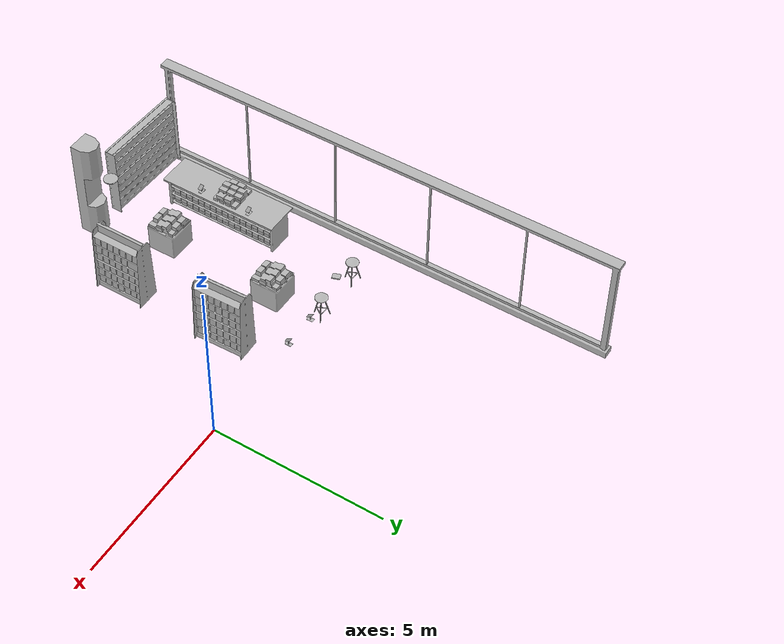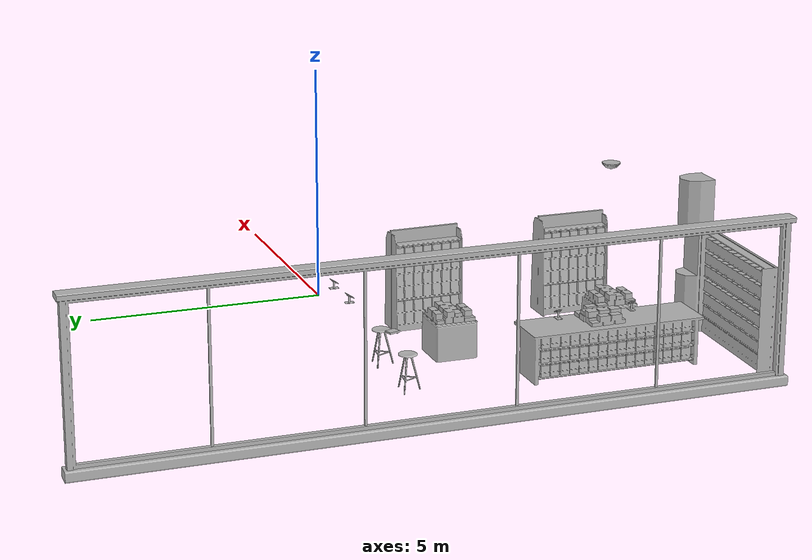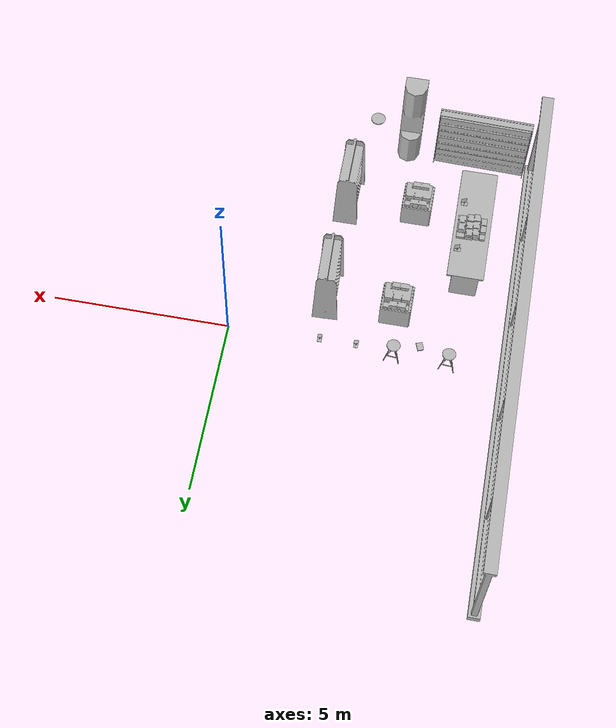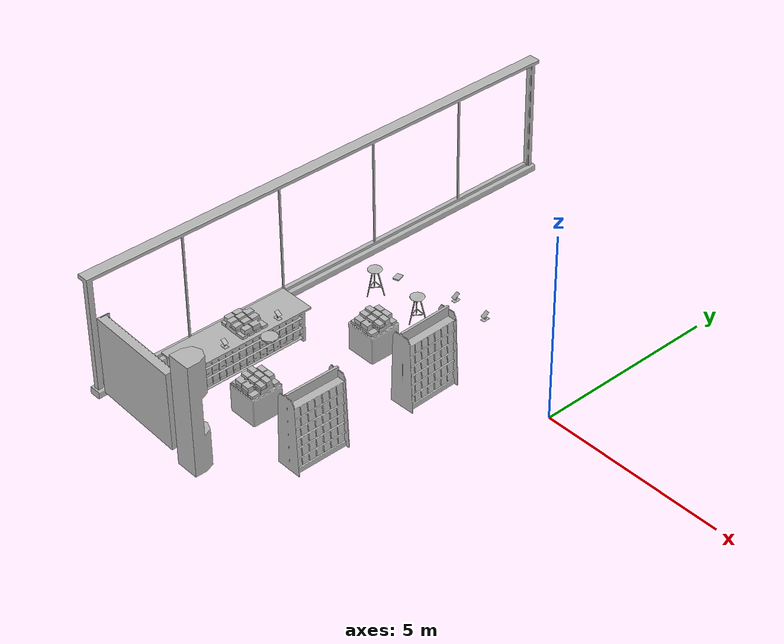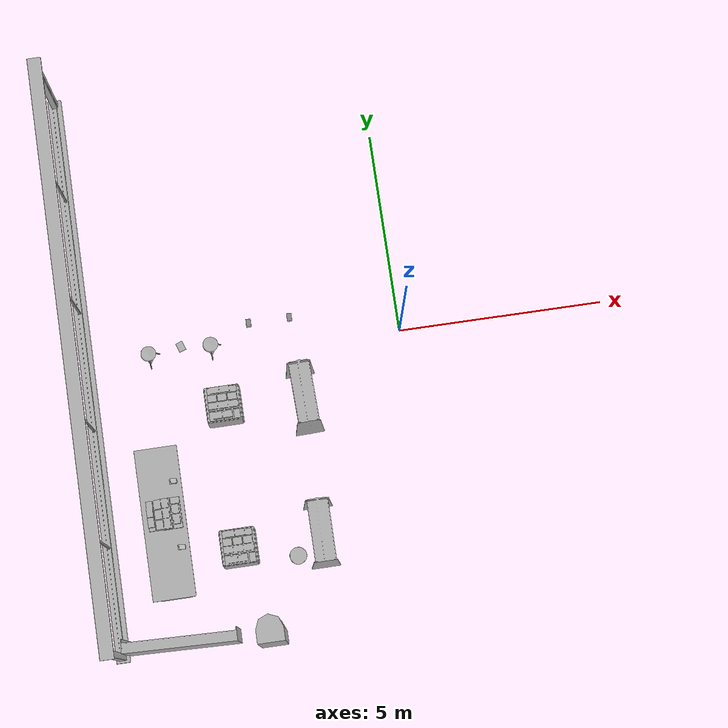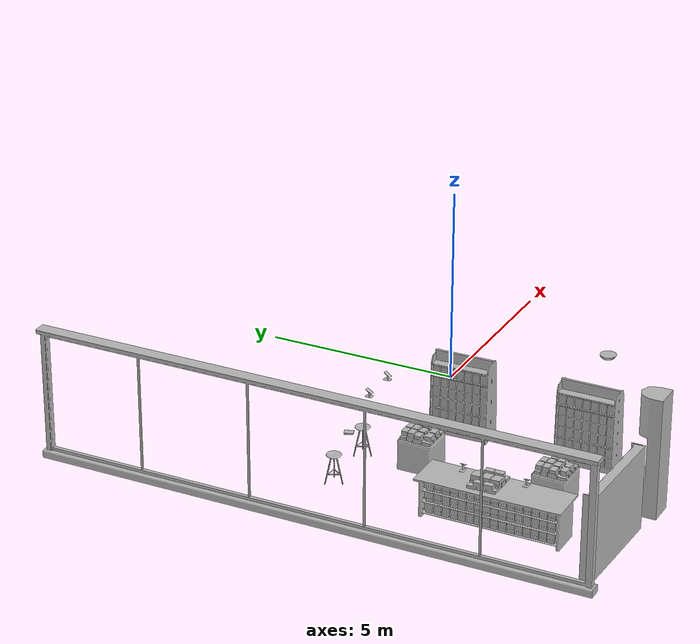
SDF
<sdf version="1.6">
 <world name="default">
  <model name="BookE_01_012">
   <link name="aws_robomaker_retail_BookE_01::link">
    <inertial>
     <mass>1</mass>
     <inertia><ixy>0</ixy><ixz>0</ixz><iyz>0</iyz><ixx>0.0666</ixx><iyy>0.0346</iyy><izz>0.0986</izz></inertia>
    </inertial>
    <collision name="collision">
     <geometry>
      <mesh>
       <uri>file://models/aws_robomaker_retail_BookE_01/meshes/aws_BookE_01_collision.DAE</uri>
       <scale>1 1 1</scale>
      </mesh>
     </geometry>
    </collision>
    <visual name="visual">
     <geometry>
      <mesh><uri>file://models/aws_robomaker_retail_BookE_01/meshes/aws_BookE_01_visual.DAE</uri></mesh>
     </geometry>
     <meta><layer>1</layer></meta>
    </visual>
   </link>
   <static>1</static>
   <pose>-5.33358 0.186186 0.949316 -1e-06 -0.004549 -2.79848</pose>
  </model>
  <model name="BookD_01_002">
   <link name="aws_robomaker_retail_BookD_01::link">
    <inertial><mass>0.5</mass></inertial>
    <collision name="collision">
     <geometry>
      <mesh>
       <uri>file://models/aws_robomaker_retail_BookD_01/meshes/aws_BookD_01_collision.DAE</uri>
       <scale>1 1 1</scale>
      </mesh>
     </geometry>
    </collision>
    <visual name="visual">
     <geometry>
      <mesh><uri>file://models/aws_robomaker_retail_BookD_01/meshes/aws_BookD_01_visual.DAE</uri></mesh>
     </geometry>
     <meta><layer>1</layer></meta>
    </visual>
   </link>
   <static>1</static>
   <pose>-4.50961 -1.31254 0.804482 0 0 -4e-06</pose>
  </model>
  <model name="BookF_01_003">
   <link name="aws_robomaker_retail_BookF_01::link">
    <inertial>
     <mass>10</mass>
     <inertia>
      <ixx>0.583817</ixx>
      <ixy>0</ixy>
      <ixz>0</ixz>
      <iyy>0.502925</iyy>
      <iyz>0</iyz>
      <izz>0.99304</izz>
     </inertia>
    </inertial>
    <collision name="collision">
     <geometry>
      <mesh>
       <uri>file://models/aws_robomaker_retail_BookF_01/meshes/aws_BookF_01_collision.DAE</uri>
       <scale>1 1 1</scale>
      </mesh>
     </geometry>
    </collision>
    <visual name="visual">
     <geometry>
      <mesh><uri>file://models/aws_robomaker_retail_BookF_01/meshes/aws_BookF_01_visual.DAE</uri></mesh>
     </geometry>
     <meta><layer>1</layer></meta>
    </visual>
   </link>
   <static>1</static>
   <pose>-4.60493 -4.77214 0.804483 4e-06 -0 0</pose>
  </model>
  <model name="BookD_01_003">
   <link name="aws_robomaker_retail_BookD_01::link">
    <inertial><mass>0.5</mass></inertial>
    <collision name="collision">
     <geometry>
      <mesh>
       <uri>file://models/aws_robomaker_retail_BookD_01/meshes/aws_BookD_01_collision.DAE</uri>
       <scale>1 1 1</scale>
      </mesh>
     </geometry>
    </collision>
    <visual name="visual">
     <geometry>
      <mesh><uri>file://models/aws_robomaker_retail_BookD_01/meshes/aws_BookD_01_visual.DAE</uri></mesh>
     </geometry>
     <meta><layer>1</layer></meta>
    </visual>
   </link>
   <static>1</static>
   <pose>-6.23561 -3.78518 1.03816 8e-06 -0 1.58038</pose>
  </model>
  <model name="BookshelfA_01_003">
   <link name="aws_robomaker_retail_BookshelfA_01::link">
    <inertial>
     <mass>50</mass>
     <inertia><ixx>27.7341</ixx><ixy>0</ixy><ixz>0</ixz><iyy>20.9361</iyy><iyz>0</iyz><izz>11.3596</izz></inertia>
    </inertial>
    <collision name="collision">
     <geometry>
      <mesh>
       <uri>file://models/aws_robomaker_retail_BookshelfA_01/meshes/aws_BookshelfA_01_collision.DAE</uri>
       <scale>1 1 1</scale>
      </mesh>
     </geometry>
    </collision>
    <visual name="visual">
     <geometry>
      <mesh><uri>file://models/aws_robomaker_retail_BookshelfA_01/meshes/aws_BookshelfA_01_visual.DAE</uri></mesh>
     </geometry>
     <meta><layer>1</layer></meta>
    </visual>
   </link>
   <static>1</static>
   <pose>-2.55449 -1.48746 0.006337 0.001313 -0.001987 0.031824</pose>
  </model>
  <model name="BookshelfA_01_004">
   <link name="aws_robomaker_retail_BookshelfA_01::link">
    <inertial>
     <mass>50</mass>
     <inertia><ixx>27.7341</ixx><ixy>0</ixy><ixz>0</ixz><iyy>20.9361</iyy><iyz>0</iyz><izz>11.3596</izz></inertia>
    </inertial>
    <collision name="collision">
     <geometry>
      <mesh>
       <uri>file://models/aws_robomaker_retail_BookshelfA_01/meshes/aws_BookshelfA_01_collision.DAE</uri>
       <scale>1 1 1</scale>
      </mesh>
     </geometry>
    </collision>
    <visual name="visual">
     <geometry>
      <mesh><uri>file://models/aws_robomaker_retail_BookshelfA_01/meshes/aws_BookshelfA_01_visual.DAE</uri></mesh>
     </geometry>
     <meta><layer>1</layer></meta>
    </visual>
   </link>
   <static>1</static>
   <pose>-2.60858 -4.76165 0.003411 0 -0 0</pose>
  </model>
  <model name="BookshelfB_01_001">
   <link name="aws_robomaker_retail_BookshelfB_01::link">
    <inertial>
     <mass>50</mass>
     <inertia><ixx>19.8742</ixx><ixy>0</ixy><ixz>0</ixz><iyy>49.1263</iyy><iyz>0</iyz><izz>30.2231</izz></inertia>
    </inertial>
    <collision name="collision">
     <geometry>
      <mesh>
       <uri>file://models/aws_robomaker_retail_BookshelfB_01/meshes/aws_BookshelfB_01_collision.DAE</uri>
       <scale>1 1 1</scale>
      </mesh>
     </geometry>
    </collision>
    <visual name="visual">
     <geometry>
      <mesh><uri>file://models/aws_robomaker_retail_BookshelfB_01/meshes/aws_BookshelfB_01_visual.DAE</uri></mesh>
     </geometry>
     <meta><layer>1</layer></meta>
    </visual>
   </link>
   <static>1</static>
   <pose>-6.18968 -6.78565 -0.008942 0.003533 0.000121 -0.032073</pose>
  </model>
  <model name="BookshelfC_01_003">
   <link name="aws_robomaker_retail_BookshelfC_01::link">
    <inertial>
     <mass>50</mass>
     <inertia><ixx>5.5865</ixx><ixy>0</ixy><ixz>0</ixz><iyy>5.47324</iyy><iyz>0</iyz><izz>6.23277</izz></inertia>
    </inertial>
    <collision name="collision">
     <geometry>
      <mesh>
       <uri>file://models/aws_robomaker_retail_BookshelfC_01/meshes/aws_BookshelfC_01_collision.DAE</uri>
       <scale>1 1 1</scale>
      </mesh>
     </geometry>
    </collision>
    <visual name="visual">
     <geometry>
      <mesh><uri>file://models/aws_robomaker_retail_BookshelfC_01/meshes/aws_BookshelfC_01_visual.DAE</uri></mesh>
     </geometry>
     <meta><layer>1</layer></meta>
    </visual>
   </link>
   <static>1</static>
   <pose>-4.51711 -1.31023 0.045908 0 -0 0</pose>
  </model>
  <model name="BookshelfC_01_004">
   <link name="aws_robomaker_retail_BookshelfC_01::link">
    <inertial>
     <mass>50</mass>
     <inertia><ixx>5.5865</ixx><ixy>0</ixy><ixz>0</ixz><iyy>5.47324</iyy><iyz>0</iyz><izz>6.23277</izz></inertia>
    </inertial>
    <collision name="collision">
     <geometry>
      <mesh>
       <uri>file://models/aws_robomaker_retail_BookshelfC_01/meshes/aws_BookshelfC_01_collision.DAE</uri>
       <scale>1 1 1</scale>
      </mesh>
     </geometry>
    </collision>
    <visual name="visual">
     <geometry>
      <mesh><uri>file://models/aws_robomaker_retail_BookshelfC_01/meshes/aws_BookshelfC_01_visual.DAE</uri></mesh>
     </geometry>
     <meta><layer>1</layer></meta>
    </visual>
   </link>
   <static>1</static>
   <pose>-4.61436 -4.76165 0.045908 0 -0 0</pose>
  </model>
  <model name="ChairB_01_015">
   <link name="aws_robomaker_retail_ChairB_01::link">
    <inertial>
     <mass>3</mass>
     <inertia>
      <ixx>0.188185</ixx>
      <ixy>0</ixy>
      <ixz>0</ixz>
      <iyy>0.190617</iyy>
      <iyz>0</iyz>
      <izz>0.100999</izz>
     </inertia>
    </inertial>
    <collision name="collision">
     <geometry>
      <mesh>
       <uri>file://models/aws_robomaker_retail_ChairB_01/meshes/aws_ChairB_01_collision.DAE</uri>
       <scale>1 1 1</scale>
      </mesh>
     </geometry>
    </collision>
    <visual name="visual">
     <geometry>
      <mesh><uri>file://models/aws_robomaker_retail_ChairB_01/meshes/aws_ChairB_01_visual.DAE</uri></mesh>
     </geometry>
     <meta><layer>1</layer></meta>
    </visual>
   </link>
   <static>1</static>
   <pose>-4.6075 0.203637 0.030218 0.001362 -0.001944 0.000163</pose>
  </model>
  <model name="ChairB_01_016">
   <link name="aws_robomaker_retail_ChairB_01::link">
    <inertial>
     <mass>3</mass>
     <inertia>
      <ixx>0.188185</ixx>
      <ixy>0</ixy>
      <ixz>0</ixz>
      <iyy>0.190617</iyy>
      <iyz>0</iyz>
      <izz>0.100999</izz>
     </inertia>
    </inertial>
    <collision name="collision">
     <geometry>
      <mesh>
       <uri>file://models/aws_robomaker_retail_ChairB_01/meshes/aws_ChairB_01_collision.DAE</uri>
       <scale>1 1 1</scale>
      </mesh>
     </geometry>
    </collision>
    <visual name="visual">
     <geometry>
      <mesh><uri>file://models/aws_robomaker_retail_ChairB_01/meshes/aws_ChairB_01_visual.DAE</uri></mesh>
     </geometry>
     <meta><layer>1</layer></meta>
    </visual>
   </link>
   <static>1</static>
   <pose>-6.12149 0.195027 0.027272 0.001357 -0.00195 0.003291</pose>
  </model>
  <model name="ColumnB_01_002">
   <link name="aws_robomaker_retail_ColumnB_01::link">
    <inertial>
     <mass>50</mass>
     <inertia><ixx>44.5597</ixx><ixy>0</ixy><ixz>0</ixz><iyy>44.5597</iyy><iyz>0</iyz><izz>1.87942</izz></inertia>
    </inertial>
    <collision name="collision">
     <geometry>
      <mesh>
       <uri>file://models/aws_robomaker_retail_ColumnB_01/meshes/aws_ColumnB_01_collision.DAE</uri>
       <scale>1 1 1</scale>
      </mesh>
     </geometry>
    </collision>
    <visual name="visual">
     <geometry>
      <mesh><uri>file://models/aws_robomaker_retail_ColumnB_01/meshes/aws_ColumnB_01_visual.DAE</uri></mesh>
     </geometry>
     <meta><layer>1</layer></meta>
    </visual>
   </link>
   <static>1</static>
   <pose>-4.07623 -6.86071 0.017511 0.001895 -0.000628 -0.003755</pose>
  </model>
  <model name="DeskA_01_003">
   <link name="aws_robomaker_retail_DeskA_01::link">
    <inertial>
     <mass>20</mass>
     <inertia><ixx>3.49717</ixx><ixy>0</ixy><ixz>0</ixz><iyy>23.5599</iyy><iyz>0</iyz><izz>23.5702</izz></inertia>
    </inertial>
    <collision name="collision">
     <geometry>
      <mesh>
       <uri>file://models/aws_robomaker_retail_DeskA_01/meshes/aws_DeskA_01_collision.DAE</uri>
       <scale>1 1 1</scale>
      </mesh>
     </geometry>
    </collision>
    <visual name="visual">
     <geometry>
      <mesh><uri>file://models/aws_robomaker_retail_DeskA_01/meshes/aws_DeskA_01_visual.DAE</uri></mesh>
     </geometry>
     <meta><layer>1</layer></meta>
    </visual>
   </link>
   <static>1</static>
   <pose>-6.25465 -3.9792 -0.004603 0.001948 0.001361 -1.56957</pose>
  </model>
  <model name="TabletB_01_011">
   <link name="aws_robomaker_retail_TabletB_01::link">
    <inertial>
     <mass>0.161</mass>
     <inertia>
      <ixx>0.346954</ixx>
      <ixy>0</ixy>
      <ixz>0</ixz>
      <iyy>0.177288</iyy>
      <iyz>0</iyz>
      <izz>0.521826</izz>
     </inertia>
    </inertial>
    <collision name="collision">
     <geometry>
      <mesh>
       <uri>file://models/aws_robomaker_retail_TabletB_01/meshes/aws_TabletB_01_collision.DAE</uri>
       <scale>1 1 1</scale>
      </mesh>
     </geometry>
    </collision>
    <visual name="visual">
     <geometry>
      <mesh><uri>file://models/aws_robomaker_retail_TabletB_01/meshes/aws_TabletB_01_visual.DAE</uri></mesh>
     </geometry>
     <meta><layer>1</layer></meta>
    </visual>
   </link>
   <static>1</static>
   <pose>-5.91505 -3.03174 1.18472 0.518384 0.023341 1.56451</pose>
  </model>
  <model name="TabletB_01_012">
   <link name="aws_robomaker_retail_TabletB_01::link">
    <inertial>
     <mass>0.161</mass>
     <inertia>
      <ixx>0.346954</ixx>
      <ixy>0</ixy>
      <ixz>0</ixz>
      <iyy>0.177288</iyy>
      <iyz>0</iyz>
      <izz>0.521826</izz>
     </inertia>
    </inertial>
    <collision name="collision">
     <geometry>
      <mesh>
       <uri>file://models/aws_robomaker_retail_TabletB_01/meshes/aws_TabletB_01_collision.DAE</uri>
       <scale>1 1 1</scale>
      </mesh>
     </geometry>
    </collision>
    <visual name="visual">
     <geometry>
      <mesh><uri>file://models/aws_robomaker_retail_TabletB_01/meshes/aws_TabletB_01_visual.DAE</uri></mesh>
     </geometry>
     <meta><layer>1</layer></meta>
    </visual>
   </link>
   <static>1</static>
   <pose>-5.91505 -4.6124 1.18472 0.518384 0.023341 1.56451</pose>
  </model>
  <model name="Tablet_01_002">
   <link name="aws_robomaker_retail_Tablet_01::link">
    <inertial>
     <mass>0.5</mass>
     <inertia><ixx>0.035652</ixx><ixy>0</ixy><ixz>0</ixz><iyy>0.01</iyy><iyz>0</iyz><izz>0.041207</izz></inertia>
    </inertial>
    <collision name="collision">
     <geometry>
      <mesh>
       <uri>file://models/aws_robomaker_retail_Tablet_01/meshes/aws_Tablet_01_collision.DAE</uri>
       <scale>1 1 1</scale>
      </mesh>
     </geometry>
    </collision>
    <visual name="visual">
     <geometry>
      <mesh><uri>file://models/aws_robomaker_retail_Tablet_01/meshes/aws_Tablet_01_visual.DAE</uri></mesh>
     </geometry>
     <meta><layer>2</layer></meta>
    </visual>
   </link>
   <static>1</static>
   <pose>-2.65015 0.489109 1.18055 0.579329 0.041534 -0.007936</pose>
  </model>
  <model name="Tablet_01_004">
   <link name="aws_robomaker_retail_Tablet_01::link">
    <inertial>
     <mass>0.5</mass>
     <inertia><ixx>0.035652</ixx><ixy>0</ixy><ixz>0</ixz><iyy>0.01</iyy><iyz>0</iyz><izz>0.041207</izz></inertia>
    </inertial>
    <collision name="collision">
     <geometry>
      <mesh>
       <uri>file://models/aws_robomaker_retail_Tablet_01/meshes/aws_Tablet_01_collision.DAE</uri>
       <scale>1 1 1</scale>
      </mesh>
     </geometry>
    </collision>
    <visual name="visual">
     <geometry>
      <mesh><uri>file://models/aws_robomaker_retail_Tablet_01/meshes/aws_Tablet_01_visual.DAE</uri></mesh>
     </geometry>
     <meta><layer>2</layer></meta>
    </visual>
   </link>
   <static>1</static>
   <pose>-3.63933 0.489109 1.18055 0.579329 0.041534 -0.007936</pose>
  </model>
  <model name="Holder_01_006">
   <link name="aws_robomaker_retail_Holder_01::link">
    <inertial><mass>1</mass></inertial>
    <collision name="collision">
     <geometry>
      <mesh>
       <uri>file://models/aws_robomaker_retail_Holder_01/meshes/aws_Holder_01_collision.DAE</uri>
       <scale>1 1 1</scale>
      </mesh>
     </geometry>
    </collision>
    <visual name="visual">
     <geometry>
      <mesh><uri>file://models/aws_robomaker_retail_Holder_01/meshes/aws_Holder_01_visual.DAE</uri></mesh>
     </geometry>
     <meta><layer>2</layer></meta>
    </visual>
   </link>
   <static>1</static>
   <pose>-2.64781 0.495602 1.03776 0 -0 0</pose>
  </model>
  <model name="Holder_01_008">
   <link name="aws_robomaker_retail_Holder_01::link">
    <inertial><mass>1</mass></inertial>
    <collision name="collision">
     <geometry>
      <mesh>
       <uri>file://models/aws_robomaker_retail_Holder_01/meshes/aws_Holder_01_collision.DAE</uri>
       <scale>1 1 1</scale>
      </mesh>
     </geometry>
    </collision>
    <visual name="visual">
     <geometry>
      <mesh><uri>file://models/aws_robomaker_retail_Holder_01/meshes/aws_Holder_01_visual.DAE</uri></mesh>
     </geometry>
     <meta><layer>2</layer></meta>
    </visual>
   </link>
   <static>1</static>
   <pose>-3.63958 0.495602 1.03776 0 -0 0</pose>
  </model>
  <model name="Holder_01_019">
   <link name="aws_robomaker_retail_Holder_01::link">
    <inertial><mass>1</mass></inertial>
    <collision name="collision">
     <geometry>
      <mesh>
       <uri>file://models/aws_robomaker_retail_Holder_01/meshes/aws_Holder_01_collision.DAE</uri>
       <scale>1 1 1</scale>
      </mesh>
     </geometry>
    </collision>
    <visual name="visual">
     <geometry>
      <mesh><uri>file://models/aws_robomaker_retail_Holder_01/meshes/aws_Holder_01_visual.DAE</uri></mesh>
     </geometry>
     <meta><layer>2</layer></meta>
    </visual>
   </link>
   <static>1</static>
   <pose>-5.92911 -3.03279 1.03776 0 -0 1.55</pose>
  </model>
  <model name="Holder_01_020">
   <link name="aws_robomaker_retail_Holder_01::link">
    <inertial><mass>1</mass></inertial>
    <collision name="collision">
     <geometry>
      <mesh>
       <uri>file://models/aws_robomaker_retail_Holder_01/meshes/aws_Holder_01_collision.DAE</uri>
       <scale>1 1 1</scale>
      </mesh>
     </geometry>
    </collision>
    <visual name="visual">
     <geometry>
      <mesh><uri>file://models/aws_robomaker_retail_Holder_01/meshes/aws_Holder_01_visual.DAE</uri></mesh>
     </geometry>
     <meta><layer>2</layer></meta>
    </visual>
   </link>
   <static>1</static>
   <pose>-5.92911 -4.60364 1.03776 0 -0 1.55</pose>
  </model>
  <model name="LightA_01_004">
   <link name="aws_robomaker_retail_LightA_01::link">
    <inertial><mass>1</mass></inertial>
    <collision name="collision">
     <geometry>
      <mesh>
       <uri>file://models/aws_robomaker_retail_LightA_01/meshes/aws_LightA_01_collision.DAE</uri>
       <scale>1 1 1</scale>
      </mesh>
     </geometry>
    </collision>
    <visual name="visual">
     <geometry>
      <mesh><uri>file://models/aws_robomaker_retail_LightA_01/meshes/aws_LightA_01_visual.DAE</uri></mesh>
     </geometry>
     <meta><layer>3</layer></meta>
    </visual>
   </link>
   <static>1</static>
   <pose>-3.21067 -5.38371 3.15033 0 -0 0</pose>
  </model>
  <model name="ShopWindow_01_001">
   <link name="aws_robomaker_retail_ShopWindow_01::link">
    <inertial><mass>1</mass></inertial>
    <collision name="collision">
     <geometry>
      <mesh>
       <uri>file://models/aws_robomaker_retail_ShopWindow_01/meshes/aws_ShopWindow_01_collision.DAE</uri>
       <scale>1 1 1</scale>
      </mesh>
     </geometry>
    </collision>
    <visual name="visual">
     <geometry>
      <mesh><uri>file://models/aws_robomaker_retail_ShopWindow_01/meshes/aws_ShopWindow_01_visual.DAE</uri></mesh>
     </geometry>
    </visual>
   </link>
   <static>1</static>
   <pose>-7.73816 0.01596 -0.180092 0 -0 0</pose>
  </model>
 </world>
</sdf>
